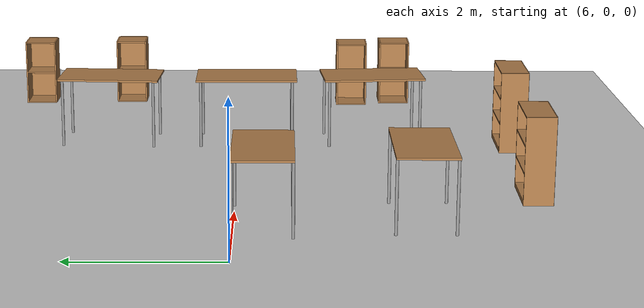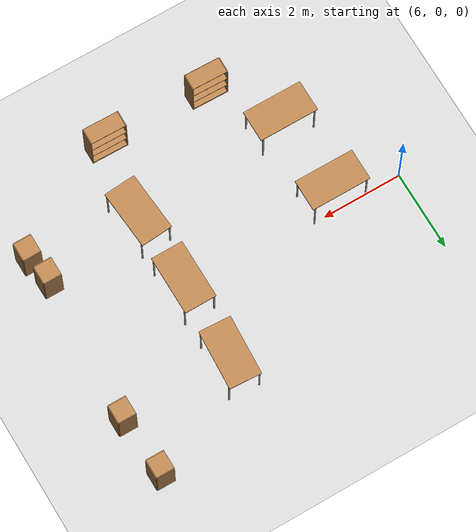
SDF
<sdf version="1.6">
 <world name="default">
  <model name="ground_plane">
   <static>1</static>
   <link name="link">
    <collision name="collision">
     <geometry><plane><normal>0 0 1</normal><size>100 100</size></plane></geometry>
     <surface>
      <contact><collide_bitmask>65535</collide_bitmask></contact>
      <friction><ode><mu>100</mu><mu2>50</mu2></ode></friction>
     </surface>
    </collision>
    <visual name="visual">
     <cast_shadows>0</cast_shadows>
     <geometry><plane><normal>0 0 1</normal><size>100 100</size></plane></geometry>
     <material>
      <script><uri>file://media/materials/scripts/gazebo.material</uri><name>Gazebo/Grey</name></script>
     </material>
    </visual>
   </link>
  </model>
  <model name="table_5">
   <static>1</static>
   <link name="link">
    <collision name="surface">
     <pose>0 0 1 0 -0 0</pose>
     <geometry><box><size>1.5 0.8 0.03</size></box></geometry>
     <surface><friction><ode><mu>0.6</mu><mu2>0.6</mu2></ode></friction></surface>
    </collision>
    <visual name="visual1">
     <pose>0 0 1 0 -0 0</pose>
     <geometry><box><size>1.5 0.8 0.03</size></box></geometry>
     <material>
      <script><uri>file://media/materials/scripts/gazebo.material</uri><name>Gazebo/Wood</name></script>
     </material>
    </visual>
    <collision name="front_left_leg">
     <pose>0.68 0.38 0.5 0 -0 0</pose>
     <geometry><cylinder><radius>0.02</radius><length>1</length></cylinder></geometry>
    </collision>
    <visual name="front_left_leg">
     <pose>0.68 0.38 0.5 0 -0 0</pose>
     <geometry><cylinder><radius>0.02</radius><length>1</length></cylinder></geometry>
     <material>
      <script><uri>file://media/materials/scripts/gazebo.material</uri><name>Gazebo/Grey</name></script>
     </material>
    </visual>
    <collision name="front_right_leg">
     <pose>0.68 -0.38 0.5 0 -0 0</pose>
     <geometry><cylinder><radius>0.02</radius><length>1</length></cylinder></geometry>
    </collision>
    <visual name="front_right_leg">
     <pose>0.68 -0.38 0.5 0 -0 0</pose>
     <geometry><cylinder><radius>0.02</radius><length>1</length></cylinder></geometry>
     <material>
      <script><uri>file://media/materials/scripts/gazebo.material</uri><name>Gazebo/Grey</name></script>
     </material>
    </visual>
    <collision name="back_right_leg">
     <pose>-0.68 -0.38 0.5 0 -0 0</pose>
     <geometry><cylinder><radius>0.02</radius><length>1</length></cylinder></geometry>
    </collision>
    <visual name="back_right_leg">
     <pose>-0.68 -0.38 0.5 0 -0 0</pose>
     <geometry><cylinder><radius>0.02</radius><length>1</length></cylinder></geometry>
     <material>
      <script><uri>file://media/materials/scripts/gazebo.material</uri><name>Gazebo/Grey</name></script>
     </material>
    </visual>
    <collision name="back_left_leg">
     <pose>-0.68 0.38 0.5 0 -0 0</pose>
     <geometry><cylinder><radius>0.02</radius><length>1</length></cylinder></geometry>
    </collision>
    <visual name="back_left_leg">
     <pose>-0.68 0.38 0.5 0 -0 0</pose>
     <geometry><cylinder><radius>0.02</radius><length>1</length></cylinder></geometry>
     <material>
      <script><uri>file://media/materials/scripts/gazebo.material</uri><name>Gazebo/Grey</name></script>
     </material>
    </visual>
   </link>
   <pose>7.72959 -2.41186 0 0 -0 0</pose>
  </model>
  <model name="table_6">
   <static>1</static>
   <link name="link">
    <collision name="surface">
     <pose>0 0 1 0 -0 0</pose>
     <geometry><box><size>1.5 0.8 0.03</size></box></geometry>
     <surface><friction><ode><mu>0.6</mu><mu2>0.6</mu2></ode></friction></surface>
    </collision>
    <visual name="visual1">
     <pose>0 0 1 0 -0 0</pose>
     <geometry><box><size>1.5 0.8 0.03</size></box></geometry>
     <material>
      <script><uri>file://media/materials/scripts/gazebo.material</uri><name>Gazebo/Wood</name></script>
     </material>
    </visual>
    <collision name="front_left_leg">
     <pose>0.68 0.38 0.5 0 -0 0</pose>
     <geometry><cylinder><radius>0.02</radius><length>1</length></cylinder></geometry>
    </collision>
    <visual name="front_left_leg">
     <pose>0.68 0.38 0.5 0 -0 0</pose>
     <geometry><cylinder><radius>0.02</radius><length>1</length></cylinder></geometry>
     <material>
      <script><uri>file://media/materials/scripts/gazebo.material</uri><name>Gazebo/Grey</name></script>
     </material>
    </visual>
    <collision name="front_right_leg">
     <pose>0.68 -0.38 0.5 0 -0 0</pose>
     <geometry><cylinder><radius>0.02</radius><length>1</length></cylinder></geometry>
    </collision>
    <visual name="front_right_leg">
     <pose>0.68 -0.38 0.5 0 -0 0</pose>
     <geometry><cylinder><radius>0.02</radius><length>1</length></cylinder></geometry>
     <material>
      <script><uri>file://media/materials/scripts/gazebo.material</uri><name>Gazebo/Grey</name></script>
     </material>
    </visual>
    <collision name="back_right_leg">
     <pose>-0.68 -0.38 0.5 0 -0 0</pose>
     <geometry><cylinder><radius>0.02</radius><length>1</length></cylinder></geometry>
    </collision>
    <visual name="back_right_leg">
     <pose>-0.68 -0.38 0.5 0 -0 0</pose>
     <geometry><cylinder><radius>0.02</radius><length>1</length></cylinder></geometry>
     <material>
      <script><uri>file://media/materials/scripts/gazebo.material</uri><name>Gazebo/Grey</name></script>
     </material>
    </visual>
    <collision name="back_left_leg">
     <pose>-0.68 0.38 0.5 0 -0 0</pose>
     <geometry><cylinder><radius>0.02</radius><length>1</length></cylinder></geometry>
    </collision>
    <visual name="back_left_leg">
     <pose>-0.68 0.38 0.5 0 -0 0</pose>
     <geometry><cylinder><radius>0.02</radius><length>1</length></cylinder></geometry>
     <material>
      <script><uri>file://media/materials/scripts/gazebo.material</uri><name>Gazebo/Grey</name></script>
     </material>
    </visual>
   </link>
   <pose>7.58183 -0.377991 0 0 -0 0</pose>
  </model>
  <model name="table_8">
   <static>1</static>
   <link name="link">
    <collision name="surface">
     <pose>0 0 1 0 -0 0</pose>
     <geometry><box><size>1.5 0.8 0.03</size></box></geometry>
     <surface><friction><ode><mu>0.6</mu><mu2>0.6</mu2></ode></friction></surface>
    </collision>
    <visual name="visual1">
     <pose>0 0 1 0 -0 0</pose>
     <geometry><box><size>1.5 0.8 0.03</size></box></geometry>
     <material>
      <script><uri>file://media/materials/scripts/gazebo.material</uri><name>Gazebo/Wood</name></script>
     </material>
    </visual>
    <collision name="front_left_leg">
     <pose>0.68 0.38 0.5 0 -0 0</pose>
     <geometry><cylinder><radius>0.02</radius><length>1</length></cylinder></geometry>
    </collision>
    <visual name="front_left_leg">
     <pose>0.68 0.38 0.5 0 -0 0</pose>
     <geometry><cylinder><radius>0.02</radius><length>1</length></cylinder></geometry>
     <material>
      <script><uri>file://media/materials/scripts/gazebo.material</uri><name>Gazebo/Grey</name></script>
     </material>
    </visual>
    <collision name="front_right_leg">
     <pose>0.68 -0.38 0.5 0 -0 0</pose>
     <geometry><cylinder><radius>0.02</radius><length>1</length></cylinder></geometry>
    </collision>
    <visual name="front_right_leg">
     <pose>0.68 -0.38 0.5 0 -0 0</pose>
     <geometry><cylinder><radius>0.02</radius><length>1</length></cylinder></geometry>
     <material>
      <script><uri>file://media/materials/scripts/gazebo.material</uri><name>Gazebo/Grey</name></script>
     </material>
    </visual>
    <collision name="back_right_leg">
     <pose>-0.68 -0.38 0.5 0 -0 0</pose>
     <geometry><cylinder><radius>0.02</radius><length>1</length></cylinder></geometry>
    </collision>
    <visual name="back_right_leg">
     <pose>-0.68 -0.38 0.5 0 -0 0</pose>
     <geometry><cylinder><radius>0.02</radius><length>1</length></cylinder></geometry>
     <material>
      <script><uri>file://media/materials/scripts/gazebo.material</uri><name>Gazebo/Grey</name></script>
     </material>
    </visual>
    <collision name="back_left_leg">
     <pose>-0.68 0.38 0.5 0 -0 0</pose>
     <geometry><cylinder><radius>0.02</radius><length>1</length></cylinder></geometry>
    </collision>
    <visual name="back_left_leg">
     <pose>-0.68 0.38 0.5 0 -0 0</pose>
     <geometry><cylinder><radius>0.02</radius><length>1</length></cylinder></geometry>
     <material>
      <script><uri>file://media/materials/scripts/gazebo.material</uri><name>Gazebo/Grey</name></script>
     </material>
    </visual>
   </link>
   <pose>11.6453 1.95401 0 0 0 -1.62653</pose>
  </model>
  <model name="table_9">
   <static>1</static>
   <link name="link">
    <collision name="surface">
     <pose>0 0 1 0 -0 0</pose>
     <geometry><box><size>1.5 0.8 0.03</size></box></geometry>
     <surface><friction><ode><mu>0.6</mu><mu2>0.6</mu2></ode></friction></surface>
    </collision>
    <visual name="visual1">
     <pose>0 0 1 0 -0 0</pose>
     <geometry><box><size>1.5 0.8 0.03</size></box></geometry>
     <material>
      <script><uri>file://media/materials/scripts/gazebo.material</uri><name>Gazebo/Wood</name></script>
     </material>
    </visual>
    <collision name="front_left_leg">
     <pose>0.68 0.38 0.5 0 -0 0</pose>
     <geometry><cylinder><radius>0.02</radius><length>1</length></cylinder></geometry>
    </collision>
    <visual name="front_left_leg">
     <pose>0.68 0.38 0.5 0 -0 0</pose>
     <geometry><cylinder><radius>0.02</radius><length>1</length></cylinder></geometry>
     <material>
      <script><uri>file://media/materials/scripts/gazebo.material</uri><name>Gazebo/Grey</name></script>
     </material>
    </visual>
    <collision name="front_right_leg">
     <pose>0.68 -0.38 0.5 0 -0 0</pose>
     <geometry><cylinder><radius>0.02</radius><length>1</length></cylinder></geometry>
    </collision>
    <visual name="front_right_leg">
     <pose>0.68 -0.38 0.5 0 -0 0</pose>
     <geometry><cylinder><radius>0.02</radius><length>1</length></cylinder></geometry>
     <material>
      <script><uri>file://media/materials/scripts/gazebo.material</uri><name>Gazebo/Grey</name></script>
     </material>
    </visual>
    <collision name="back_right_leg">
     <pose>-0.68 -0.38 0.5 0 -0 0</pose>
     <geometry><cylinder><radius>0.02</radius><length>1</length></cylinder></geometry>
    </collision>
    <visual name="back_right_leg">
     <pose>-0.68 -0.38 0.5 0 -0 0</pose>
     <geometry><cylinder><radius>0.02</radius><length>1</length></cylinder></geometry>
     <material>
      <script><uri>file://media/materials/scripts/gazebo.material</uri><name>Gazebo/Grey</name></script>
     </material>
    </visual>
    <collision name="back_left_leg">
     <pose>-0.68 0.38 0.5 0 -0 0</pose>
     <geometry><cylinder><radius>0.02</radius><length>1</length></cylinder></geometry>
    </collision>
    <visual name="back_left_leg">
     <pose>-0.68 0.38 0.5 0 -0 0</pose>
     <geometry><cylinder><radius>0.02</radius><length>1</length></cylinder></geometry>
     <material>
      <script><uri>file://media/materials/scripts/gazebo.material</uri><name>Gazebo/Grey</name></script>
     </material>
    </visual>
   </link>
   <pose>11.636 -0.088235 0 0 0 -1.56626</pose>
  </model>
  <model name="table_10">
   <static>1</static>
   <link name="link">
    <collision name="surface">
     <pose>0 0 1 0 -0 0</pose>
     <geometry><box><size>1.5 0.8 0.03</size></box></geometry>
     <surface><friction><ode><mu>0.6</mu><mu2>0.6</mu2></ode></friction></surface>
    </collision>
    <visual name="visual1">
     <pose>0 0 1 0 -0 0</pose>
     <geometry><box><size>1.5 0.8 0.03</size></box></geometry>
     <material>
      <script><uri>file://media/materials/scripts/gazebo.material</uri><name>Gazebo/Wood</name></script>
     </material>
    </visual>
    <collision name="front_left_leg">
     <pose>0.68 0.38 0.5 0 -0 0</pose>
     <geometry><cylinder><radius>0.02</radius><length>1</length></cylinder></geometry>
    </collision>
    <visual name="front_left_leg">
     <pose>0.68 0.38 0.5 0 -0 0</pose>
     <geometry><cylinder><radius>0.02</radius><length>1</length></cylinder></geometry>
     <material>
      <script><uri>file://media/materials/scripts/gazebo.material</uri><name>Gazebo/Grey</name></script>
     </material>
    </visual>
    <collision name="front_right_leg">
     <pose>0.68 -0.38 0.5 0 -0 0</pose>
     <geometry><cylinder><radius>0.02</radius><length>1</length></cylinder></geometry>
    </collision>
    <visual name="front_right_leg">
     <pose>0.68 -0.38 0.5 0 -0 0</pose>
     <geometry><cylinder><radius>0.02</radius><length>1</length></cylinder></geometry>
     <material>
      <script><uri>file://media/materials/scripts/gazebo.material</uri><name>Gazebo/Grey</name></script>
     </material>
    </visual>
    <collision name="back_right_leg">
     <pose>-0.68 -0.38 0.5 0 -0 0</pose>
     <geometry><cylinder><radius>0.02</radius><length>1</length></cylinder></geometry>
    </collision>
    <visual name="back_right_leg">
     <pose>-0.68 -0.38 0.5 0 -0 0</pose>
     <geometry><cylinder><radius>0.02</radius><length>1</length></cylinder></geometry>
     <material>
      <script><uri>file://media/materials/scripts/gazebo.material</uri><name>Gazebo/Grey</name></script>
     </material>
    </visual>
    <collision name="back_left_leg">
     <pose>-0.68 0.38 0.5 0 -0 0</pose>
     <geometry><cylinder><radius>0.02</radius><length>1</length></cylinder></geometry>
    </collision>
    <visual name="back_left_leg">
     <pose>-0.68 0.38 0.5 0 -0 0</pose>
     <geometry><cylinder><radius>0.02</radius><length>1</length></cylinder></geometry>
     <material>
      <script><uri>file://media/materials/scripts/gazebo.material</uri><name>Gazebo/Grey</name></script>
     </material>
    </visual>
   </link>
   <pose>11.7167 -1.97393 0 0 -0 1.65023</pose>
  </model>
  <model name="bookshelf">
   <static>1</static>
   <link name="link">
    <inertial><mass>1</mass></inertial>
    <collision name="back">
     <pose>0 0.005 0.6 0 -0 0</pose>
     <geometry><box><size>0.9 0.01 1.2</size></box></geometry>
    </collision>
    <visual name="visual1">
     <pose>0 0.005 0.6 0 -0 0</pose>
     <geometry><box><size>0.9 0.01 1.2</size></box></geometry>
     <material>
      <script><uri>file://media/materials/scripts/gazebo.material</uri><name>Gazebo/Wood</name></script>
     </material>
    </visual>
    <collision name="left_side">
     <pose>0.45 -0.195 0.6 0 -0 0</pose>
     <geometry><box><size>0.02 0.4 1.2</size></box></geometry>
    </collision>
    <visual name="visual2">
     <pose>0.45 -0.195 0.6 0 -0 0</pose>
     <geometry><box><size>0.02 0.4 1.2</size></box></geometry>
     <material>
      <script><uri>file://media/materials/scripts/gazebo.material</uri><name>Gazebo/Wood</name></script>
     </material>
    </visual>
    <collision name="right_side">
     <pose>-0.45 -0.195 0.6 0 -0 0</pose>
     <geometry><box><size>0.02 0.4 1.2</size></box></geometry>
    </collision>
    <visual name="visual3">
     <pose>-0.45 -0.195 0.6 0 -0 0</pose>
     <geometry><box><size>0.02 0.4 1.2</size></box></geometry>
     <material>
      <script><uri>file://media/materials/scripts/gazebo.material</uri><name>Gazebo/Wood</name></script>
     </material>
    </visual>
    <collision name="bottom">
     <pose>0 -0.195 0.03 0 -0 0</pose>
     <geometry><box><size>0.88 0.4 0.06</size></box></geometry>
    </collision>
    <visual name="visual4">
     <pose>0 -0.195 0.03 0 -0 0</pose>
     <geometry><box><size>0.88 0.4 0.06</size></box></geometry>
     <material>
      <script><uri>file://media/materials/scripts/gazebo.material</uri><name>Gazebo/Wood</name></script>
     </material>
    </visual>
    <collision name="top">
     <pose>0 -0.195 1.19 0 -0 0</pose>
     <geometry><box><size>0.88 0.4 0.02</size></box></geometry>
    </collision>
    <visual name="visual5">
     <pose>0 -0.195 1.19 0 -0 0</pose>
     <geometry><box><size>0.88 0.4 0.02</size></box></geometry>
     <material>
      <script><uri>file://media/materials/scripts/gazebo.material</uri><name>Gazebo/Wood</name></script>
     </material>
    </visual>
    <collision name="low_shelf">
     <pose>0 -0.195 0.43 0 -0 0</pose>
     <geometry><box><size>0.88 0.4 0.02</size></box></geometry>
    </collision>
    <visual name="visual6">
     <pose>0 -0.195 0.43 0 -0 0</pose>
     <geometry><box><size>0.88 0.4 0.02</size></box></geometry>
     <material>
      <script><uri>file://media/materials/scripts/gazebo.material</uri><name>Gazebo/Wood</name></script>
     </material>
    </visual>
    <collision name="high_shelf">
     <pose>0 -0.195 0.8 0 -0 0</pose>
     <geometry><box><size>0.88 0.4 0.02</size></box></geometry>
    </collision>
    <visual name="visual7">
     <pose>0 -0.195 0.8 0 -0 0</pose>
     <geometry><box><size>0.88 0.4 0.02</size></box></geometry>
     <material>
      <script><uri>file://media/materials/scripts/gazebo.material</uri><name>Gazebo/Wood</name></script>
     </material>
    </visual>
   </link>
   <pose>11.3996 -4.22003 0 0 -0 3.12871</pose>
  </model>
  <model name="bookshelf_1">
   <static>1</static>
   <link name="link">
    <inertial><mass>1</mass></inertial>
    <collision name="back">
     <pose>0 0.005 0.6 0 -0 0</pose>
     <geometry><box><size>0.9 0.01 1.2</size></box></geometry>
    </collision>
    <visual name="visual1">
     <pose>0 0.005 0.6 0 -0 0</pose>
     <geometry><box><size>0.9 0.01 1.2</size></box></geometry>
     <material>
      <script><uri>file://media/materials/scripts/gazebo.material</uri><name>Gazebo/Wood</name></script>
     </material>
    </visual>
    <collision name="left_side">
     <pose>0.45 -0.195 0.6 0 -0 0</pose>
     <geometry><box><size>0.02 0.4 1.2</size></box></geometry>
    </collision>
    <visual name="visual2">
     <pose>0.45 -0.195 0.6 0 -0 0</pose>
     <geometry><box><size>0.02 0.4 1.2</size></box></geometry>
     <material>
      <script><uri>file://media/materials/scripts/gazebo.material</uri><name>Gazebo/Wood</name></script>
     </material>
    </visual>
    <collision name="right_side">
     <pose>-0.45 -0.195 0.6 0 -0 0</pose>
     <geometry><box><size>0.02 0.4 1.2</size></box></geometry>
    </collision>
    <visual name="visual3">
     <pose>-0.45 -0.195 0.6 0 -0 0</pose>
     <geometry><box><size>0.02 0.4 1.2</size></box></geometry>
     <material>
      <script><uri>file://media/materials/scripts/gazebo.material</uri><name>Gazebo/Wood</name></script>
     </material>
    </visual>
    <collision name="bottom">
     <pose>0 -0.195 0.03 0 -0 0</pose>
     <geometry><box><size>0.88 0.4 0.06</size></box></geometry>
    </collision>
    <visual name="visual4">
     <pose>0 -0.195 0.03 0 -0 0</pose>
     <geometry><box><size>0.88 0.4 0.06</size></box></geometry>
     <material>
      <script><uri>file://media/materials/scripts/gazebo.material</uri><name>Gazebo/Wood</name></script>
     </material>
    </visual>
    <collision name="top">
     <pose>0 -0.195 1.19 0 -0 0</pose>
     <geometry><box><size>0.88 0.4 0.02</size></box></geometry>
    </collision>
    <visual name="visual5">
     <pose>0 -0.195 1.19 0 -0 0</pose>
     <geometry><box><size>0.88 0.4 0.02</size></box></geometry>
     <material>
      <script><uri>file://media/materials/scripts/gazebo.material</uri><name>Gazebo/Wood</name></script>
     </material>
    </visual>
    <collision name="low_shelf">
     <pose>0 -0.195 0.43 0 -0 0</pose>
     <geometry><box><size>0.88 0.4 0.02</size></box></geometry>
    </collision>
    <visual name="visual6">
     <pose>0 -0.195 0.43 0 -0 0</pose>
     <geometry><box><size>0.88 0.4 0.02</size></box></geometry>
     <material>
      <script><uri>file://media/materials/scripts/gazebo.material</uri><name>Gazebo/Wood</name></script>
     </material>
    </visual>
    <collision name="high_shelf">
     <pose>0 -0.195 0.8 0 -0 0</pose>
     <geometry><box><size>0.88 0.4 0.02</size></box></geometry>
    </collision>
    <visual name="visual7">
     <pose>0 -0.195 0.8 0 -0 0</pose>
     <geometry><box><size>0.88 0.4 0.02</size></box></geometry>
     <material>
      <script><uri>file://media/materials/scripts/gazebo.material</uri><name>Gazebo/Wood</name></script>
     </material>
    </visual>
   </link>
   <pose>8.75275 -4.19226 0 0 -0 3.12257</pose>
  </model>
  <model name="cabinet_0">
   <static>1</static>
   <link name="cabinet_bottom_plate">
    <inertial>
     <pose>0 0 -1 0 -0 0</pose>
     <inertia><ixx>2.05</ixx><ixy>0</ixy><ixz>0</ixz><iyy>2.05</iyy><iyz>0</iyz><izz>2.05</izz></inertia>
     <mass>25</mass>
    </inertial>
    <collision name="cabinet_bottom_plate_geom">
     <pose>0 0 0.01 0 -0 0</pose>
     <geometry><box><size>0.45 0.45 0.02</size></box></geometry>
    </collision>
    <visual name="cabinet_bottom_plate_geom_visual">
     <pose>0 0 0.01 0 -0 0</pose>
     <geometry><box><size>0.45 0.45 0.02</size></box></geometry>
     <material>
      <script><uri>file://media/materials/scripts/gazebo.material</uri><name>Gazebo/Wood</name></script>
     </material>
    </visual>
    <collision name="cabinet_bottom_plate_geom_cabinet_back_plate">
     <pose>0.235 0 0.51 0 -0 0</pose>
     <geometry><box><size>0.02 0.45 1.02</size></box></geometry>
    </collision>
    <visual name="cabinet_bottom_plate_geom_cabinet_back_plate_visual">
     <pose>0.235 0 0.51 0 -0 0</pose>
     <geometry><box><size>0.02 0.45 1.02</size></box></geometry>
     <material>
      <script><uri>file://media/materials/scripts/gazebo.material</uri><name>Gazebo/Wood</name></script>
     </material>
    </visual>
    <collision name="cabinet_bottom_plate_geom_cabinet_left_plate">
     <pose>0 0.235 0.51 0 -0 0</pose>
     <geometry><box><size>0.45 0.02 1.02</size></box></geometry>
    </collision>
    <visual name="cabinet_bottom_plate_geom_cabinet_left_plate_visual">
     <pose>0 0.235 0.51 0 -0 0</pose>
     <geometry><box><size>0.45 0.02 1.02</size></box></geometry>
     <material>
      <script><uri>file://media/materials/scripts/gazebo.material</uri><name>Gazebo/Wood</name></script>
     </material>
    </visual>
    <collision name="cabinet_bottom_plate_geom_cabinet_middle_plate">
     <pose>0 0 0.51 0 -0 0</pose>
     <geometry><box><size>0.45 0.45 0.02</size></box></geometry>
    </collision>
    <visual name="cabinet_bottom_plate_geom_cabinet_middle_plate_visual">
     <pose>0 0 0.51 0 -0 0</pose>
     <geometry><box><size>0.45 0.45 0.02</size></box></geometry>
     <material>
      <script><uri>file://media/materials/scripts/gazebo.material</uri><name>Gazebo/Wood</name></script>
     </material>
    </visual>
    <collision name="cabinet_bottom_plate_geom_cabinet_right_plate">
     <pose>0 -0.235 0.51 0 -0 0</pose>
     <geometry><box><size>0.45 0.02 1.02</size></box></geometry>
    </collision>
    <visual name="cabinet_bottom_plate_geom_cabinet_right_plate_visual">
     <pose>0 -0.235 0.51 0 -0 0</pose>
     <geometry><box><size>0.45 0.02 1.02</size></box></geometry>
     <material>
      <script><uri>file://media/materials/scripts/gazebo.material</uri><name>Gazebo/Wood</name></script>
     </material>
    </visual>
    <collision name="cabinet_bottom_plate_geom_cabinet_top_plate">
     <pose>0 0 1.01 0 -0 0</pose>
     <geometry><box><size>0.45 0.45 0.02</size></box></geometry>
    </collision>
    <visual name="cabinet_bottom_plate_geom_cabinet_top_plate_visual">
     <pose>0 0 1.01 0 -0 0</pose>
     <geometry><box><size>0.45 0.45 0.02</size></box></geometry>
     <material>
      <script><uri>file://media/materials/scripts/gazebo.material</uri><name>Gazebo/Wood</name></script>
     </material>
    </visual>
   </link>
   <pose>14.3557 1.8822 0 0 -0 0</pose>
  </model>
  <model name="cabinet_1">
   <static>1</static>
   <link name="cabinet_bottom_plate">
    <inertial>
     <pose>0 0 -1 0 -0 0</pose>
     <inertia><ixx>2.05</ixx><ixy>0</ixy><ixz>0</ixz><iyy>2.05</iyy><iyz>0</iyz><izz>2.05</izz></inertia>
     <mass>25</mass>
    </inertial>
    <collision name="cabinet_bottom_plate_geom">
     <pose>0 0 0.01 0 -0 0</pose>
     <geometry><box><size>0.45 0.45 0.02</size></box></geometry>
    </collision>
    <visual name="cabinet_bottom_plate_geom_visual">
     <pose>0 0 0.01 0 -0 0</pose>
     <geometry><box><size>0.45 0.45 0.02</size></box></geometry>
     <material>
      <script><uri>file://media/materials/scripts/gazebo.material</uri><name>Gazebo/Wood</name></script>
     </material>
    </visual>
    <collision name="cabinet_bottom_plate_geom_cabinet_back_plate">
     <pose>0.235 0 0.51 0 -0 0</pose>
     <geometry><box><size>0.02 0.45 1.02</size></box></geometry>
    </collision>
    <visual name="cabinet_bottom_plate_geom_cabinet_back_plate_visual">
     <pose>0.235 0 0.51 0 -0 0</pose>
     <geometry><box><size>0.02 0.45 1.02</size></box></geometry>
     <material>
      <script><uri>file://media/materials/scripts/gazebo.material</uri><name>Gazebo/Wood</name></script>
     </material>
    </visual>
    <collision name="cabinet_bottom_plate_geom_cabinet_left_plate">
     <pose>0 0.235 0.51 0 -0 0</pose>
     <geometry><box><size>0.45 0.02 1.02</size></box></geometry>
    </collision>
    <visual name="cabinet_bottom_plate_geom_cabinet_left_plate_visual">
     <pose>0 0.235 0.51 0 -0 0</pose>
     <geometry><box><size>0.45 0.02 1.02</size></box></geometry>
     <material>
      <script><uri>file://media/materials/scripts/gazebo.material</uri><name>Gazebo/Wood</name></script>
     </material>
    </visual>
    <collision name="cabinet_bottom_plate_geom_cabinet_middle_plate">
     <pose>0 0 0.51 0 -0 0</pose>
     <geometry><box><size>0.45 0.45 0.02</size></box></geometry>
    </collision>
    <visual name="cabinet_bottom_plate_geom_cabinet_middle_plate_visual">
     <pose>0 0 0.51 0 -0 0</pose>
     <geometry><box><size>0.45 0.45 0.02</size></box></geometry>
     <material>
      <script><uri>file://media/materials/scripts/gazebo.material</uri><name>Gazebo/Wood</name></script>
     </material>
    </visual>
    <collision name="cabinet_bottom_plate_geom_cabinet_right_plate">
     <pose>0 -0.235 0.51 0 -0 0</pose>
     <geometry><box><size>0.45 0.02 1.02</size></box></geometry>
    </collision>
    <visual name="cabinet_bottom_plate_geom_cabinet_right_plate_visual">
     <pose>0 -0.235 0.51 0 -0 0</pose>
     <geometry><box><size>0.45 0.02 1.02</size></box></geometry>
     <material>
      <script><uri>file://media/materials/scripts/gazebo.material</uri><name>Gazebo/Wood</name></script>
     </material>
    </visual>
    <collision name="cabinet_bottom_plate_geom_cabinet_top_plate">
     <pose>0 0 1.01 0 -0 0</pose>
     <geometry><box><size>0.45 0.45 0.02</size></box></geometry>
    </collision>
    <visual name="cabinet_bottom_plate_geom_cabinet_top_plate_visual">
     <pose>0 0 1.01 0 -0 0</pose>
     <geometry><box><size>0.45 0.45 0.02</size></box></geometry>
     <material>
      <script><uri>file://media/materials/scripts/gazebo.material</uri><name>Gazebo/Wood</name></script>
     </material>
    </visual>
   </link>
   <pose>14.1706 -1.76598 0 0 -0 0</pose>
  </model>
  <model name="cabinet_2">
   <static>1</static>
   <link name="cabinet_bottom_plate">
    <inertial>
     <pose>0 0 -1 0 -0 0</pose>
     <inertia><ixx>2.05</ixx><ixy>0</ixy><ixz>0</ixz><iyy>2.05</iyy><iyz>0</iyz><izz>2.05</izz></inertia>
     <mass>25</mass>
    </inertial>
    <collision name="cabinet_bottom_plate_geom">
     <pose>0 0 0.01 0 -0 0</pose>
     <geometry><box><size>0.45 0.45 0.02</size></box></geometry>
    </collision>
    <visual name="cabinet_bottom_plate_geom_visual">
     <pose>0 0 0.01 0 -0 0</pose>
     <geometry><box><size>0.45 0.45 0.02</size></box></geometry>
     <material>
      <script><uri>file://media/materials/scripts/gazebo.material</uri><name>Gazebo/Wood</name></script>
     </material>
    </visual>
    <collision name="cabinet_bottom_plate_geom_cabinet_back_plate">
     <pose>0.235 0 0.51 0 -0 0</pose>
     <geometry><box><size>0.02 0.45 1.02</size></box></geometry>
    </collision>
    <visual name="cabinet_bottom_plate_geom_cabinet_back_plate_visual">
     <pose>0.235 0 0.51 0 -0 0</pose>
     <geometry><box><size>0.02 0.45 1.02</size></box></geometry>
     <material>
      <script><uri>file://media/materials/scripts/gazebo.material</uri><name>Gazebo/Wood</name></script>
     </material>
    </visual>
    <collision name="cabinet_bottom_plate_geom_cabinet_left_plate">
     <pose>0 0.235 0.51 0 -0 0</pose>
     <geometry><box><size>0.45 0.02 1.02</size></box></geometry>
    </collision>
    <visual name="cabinet_bottom_plate_geom_cabinet_left_plate_visual">
     <pose>0 0.235 0.51 0 -0 0</pose>
     <geometry><box><size>0.45 0.02 1.02</size></box></geometry>
     <material>
      <script><uri>file://media/materials/scripts/gazebo.material</uri><name>Gazebo/Wood</name></script>
     </material>
    </visual>
    <collision name="cabinet_bottom_plate_geom_cabinet_middle_plate">
     <pose>0 0 0.51 0 -0 0</pose>
     <geometry><box><size>0.45 0.45 0.02</size></box></geometry>
    </collision>
    <visual name="cabinet_bottom_plate_geom_cabinet_middle_plate_visual">
     <pose>0 0 0.51 0 -0 0</pose>
     <geometry><box><size>0.45 0.45 0.02</size></box></geometry>
     <material>
      <script><uri>file://media/materials/scripts/gazebo.material</uri><name>Gazebo/Wood</name></script>
     </material>
    </visual>
    <collision name="cabinet_bottom_plate_geom_cabinet_right_plate">
     <pose>0 -0.235 0.51 0 -0 0</pose>
     <geometry><box><size>0.45 0.02 1.02</size></box></geometry>
    </collision>
    <visual name="cabinet_bottom_plate_geom_cabinet_right_plate_visual">
     <pose>0 -0.235 0.51 0 -0 0</pose>
     <geometry><box><size>0.45 0.02 1.02</size></box></geometry>
     <material>
      <script><uri>file://media/materials/scripts/gazebo.material</uri><name>Gazebo/Wood</name></script>
     </material>
    </visual>
    <collision name="cabinet_bottom_plate_geom_cabinet_top_plate">
     <pose>0 0 1.01 0 -0 0</pose>
     <geometry><box><size>0.45 0.45 0.02</size></box></geometry>
    </collision>
    <visual name="cabinet_bottom_plate_geom_cabinet_top_plate_visual">
     <pose>0 0 1.01 0 -0 0</pose>
     <geometry><box><size>0.45 0.45 0.02</size></box></geometry>
     <material>
      <script><uri>file://media/materials/scripts/gazebo.material</uri><name>Gazebo/Wood</name></script>
     </material>
    </visual>
   </link>
   <pose>14.2944 -2.47183 0 0 -0 0</pose>
  </model>
  <model name="cabinet">
   <static>1</static>
   <link name="cabinet_bottom_plate">
    <inertial>
     <pose>0 0 -1 0 -0 0</pose>
     <inertia><ixx>2.05</ixx><ixy>0</ixy><ixz>0</ixz><iyy>2.05</iyy><iyz>0</iyz><izz>2.05</izz></inertia>
     <mass>25</mass>
    </inertial>
    <collision name="cabinet_bottom_plate_geom">
     <pose>0 0 0.01 0 -0 0</pose>
     <geometry><box><size>0.45 0.45 0.02</size></box></geometry>
    </collision>
    <visual name="cabinet_bottom_plate_geom_visual">
     <pose>0 0 0.01 0 -0 0</pose>
     <geometry><box><size>0.45 0.45 0.02</size></box></geometry>
     <material>
      <script><uri>file://media/materials/scripts/gazebo.material</uri><name>Gazebo/Wood</name></script>
     </material>
    </visual>
    <collision name="cabinet_bottom_plate_geom_cabinet_back_plate">
     <pose>0.235 0 0.51 0 -0 0</pose>
     <geometry><box><size>0.02 0.45 1.02</size></box></geometry>
    </collision>
    <visual name="cabinet_bottom_plate_geom_cabinet_back_plate_visual">
     <pose>0.235 0 0.51 0 -0 0</pose>
     <geometry><box><size>0.02 0.45 1.02</size></box></geometry>
     <material>
      <script><uri>file://media/materials/scripts/gazebo.material</uri><name>Gazebo/Wood</name></script>
     </material>
    </visual>
    <collision name="cabinet_bottom_plate_geom_cabinet_left_plate">
     <pose>0 0.235 0.51 0 -0 0</pose>
     <geometry><box><size>0.45 0.02 1.02</size></box></geometry>
    </collision>
    <visual name="cabinet_bottom_plate_geom_cabinet_left_plate_visual">
     <pose>0 0.235 0.51 0 -0 0</pose>
     <geometry><box><size>0.45 0.02 1.02</size></box></geometry>
     <material>
      <script><uri>file://media/materials/scripts/gazebo.material</uri><name>Gazebo/Wood</name></script>
     </material>
    </visual>
    <collision name="cabinet_bottom_plate_geom_cabinet_middle_plate">
     <pose>0 0 0.51 0 -0 0</pose>
     <geometry><box><size>0.45 0.45 0.02</size></box></geometry>
    </collision>
    <visual name="cabinet_bottom_plate_geom_cabinet_middle_plate_visual">
     <pose>0 0 0.51 0 -0 0</pose>
     <geometry><box><size>0.45 0.45 0.02</size></box></geometry>
     <material>
      <script><uri>file://media/materials/scripts/gazebo.material</uri><name>Gazebo/Wood</name></script>
     </material>
    </visual>
    <collision name="cabinet_bottom_plate_geom_cabinet_right_plate">
     <pose>0 -0.235 0.51 0 -0 0</pose>
     <geometry><box><size>0.45 0.02 1.02</size></box></geometry>
    </collision>
    <visual name="cabinet_bottom_plate_geom_cabinet_right_plate_visual">
     <pose>0 -0.235 0.51 0 -0 0</pose>
     <geometry><box><size>0.45 0.02 1.02</size></box></geometry>
     <material>
      <script><uri>file://media/materials/scripts/gazebo.material</uri><name>Gazebo/Wood</name></script>
     </material>
    </visual>
    <collision name="cabinet_bottom_plate_geom_cabinet_top_plate">
     <pose>0 0 1.01 0 -0 0</pose>
     <geometry><box><size>0.45 0.45 0.02</size></box></geometry>
    </collision>
    <visual name="cabinet_bottom_plate_geom_cabinet_top_plate_visual">
     <pose>0 0 1.01 0 -0 0</pose>
     <geometry><box><size>0.45 0.45 0.02</size></box></geometry>
     <material>
      <script><uri>file://media/materials/scripts/gazebo.material</uri><name>Gazebo/Wood</name></script>
     </material>
    </visual>
   </link>
   <pose>14.2612 3.37846 0 0 -0 0</pose>
  </model>
 </world>
</sdf>
